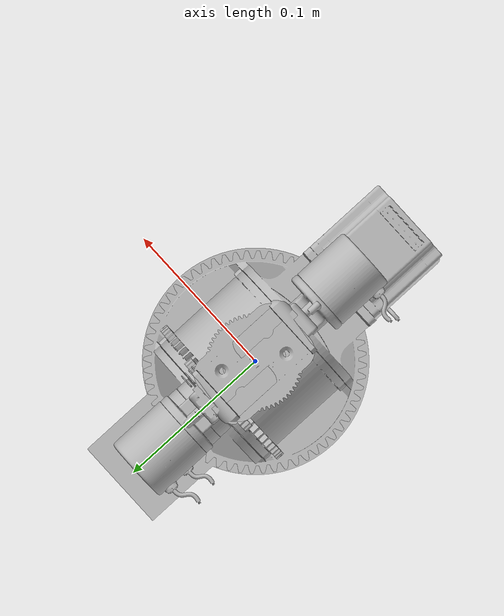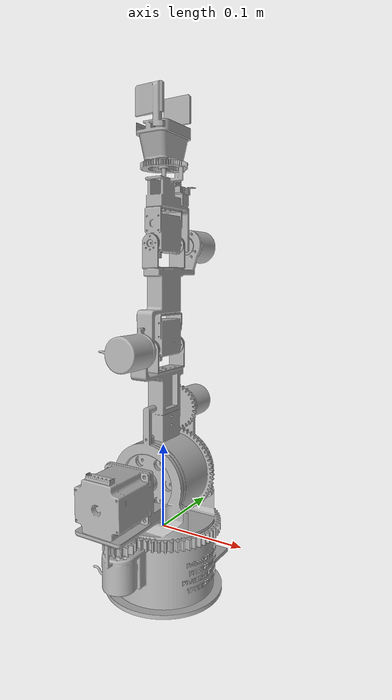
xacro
<?xml version="1.0" ?>
<robot name="robotic" xmlns:xacro="http://www.ros.org/wiki/xacro">

<xacro:include filename="$(find robotic_description)/urdf/materials.xacro" />
<xacro:include filename="$(find robotic_description)/urdf/robotic.trans" />
<xacro:include filename="$(find robotic_description)/urdf/robotic.gazebo" />
<link name="base_link">
  <inertial>
    <origin xyz="-0.0006197580582812044 -0.033206671784566606 0.010865637221635136" rpy="0 0 0"/>
    <mass value="0.43302193292479546"/>
    <inertia ixx="0.001313" iyy="0.001432" izz="0.000805" ixy="6e-06" iyz="-0.000148" ixz="2.1e-05"/>
  </inertial>
  <visual>
    <origin xyz="0 0 0" rpy="1.5708 0 0"/>
    <geometry>
      <mesh filename="file://$(find robotic_description)/meshes/base_link.stl" scale="0.001 0.001 0.001"/>
    </geometry>
    <material name="silver"/>
  </visual>
  <collision>
    <origin xyz="0 0 0" rpy="1.5708 0 0"/>
    <geometry>
      <mesh filename="file://$(find robotic_description)/meshes/base_link.stl" scale="0.001 0.001 0.001"/>
    </geometry>
  </collision>
</link>

<link name="SHOULDER_1">
  <inertial>
    <origin xyz="-2.8680225580023265e-05 0.062031226314745724 0.07526534523296123" rpy="0 0 0"/>
    <mass value="1.5905060599186267"/>
    <inertia ixx="0.00487" iyy="0.004113" izz="0.001823" ixy="-2e-06" iyz="0.000179" ixz="-0.0"/>
  </inertial>
  <visual>
    <origin xyz="-0.0 -0.000487 -0.0" rpy="0 0 0"/>
    <geometry>
      <mesh filename="file://$(find robotic_description)/meshes/SHOULDER_1.stl" scale="0.001 0.001 0.001"/>
    </geometry>
    <material name="silver"/>
  </visual>
  <collision>
    <origin xyz="-0.0 -0.000487 -0.0" rpy="0 0 0"/>
    <geometry>
      <mesh filename="file://$(find robotic_description)/meshes/SHOULDER_1.stl" scale="0.001 0.001 0.001"/>
    </geometry>
  </collision>
</link>

<link name="LOWER_ARM_1">
  <inertial>
    <origin xyz="0.00022188412497526803 0.044088835954916084 -0.02046970272003481" rpy="0 0 0"/>
    <mass value="2.24700987919169"/>
    <inertia ixx="0.011497" iyy="0.003238" izz="0.010342" ixy="-5.4e-05" iyz="-0.002861" ixz="-2.8e-05"/>
  </inertial>
  <visual>
    <origin xyz="-0.0 -0.064574 -0.03115" rpy="0 0 0"/>
    <geometry>
      <mesh filename="file://$(find robotic_description)/meshes/LOWER_ARM_1.stl" scale="0.001 0.001 0.001"/>
    </geometry>
    <material name="silver"/>
  </visual>
  <collision>
    <origin xyz="-0.0 -0.064574 -0.03115" rpy="0 0 0"/>
    <geometry>
      <mesh filename="file://$(find robotic_description)/meshes/LOWER_ARM_1.stl" scale="0.001 0.001 0.001"/>
    </geometry>
  </collision>
</link>

<link name="UPPER_ARM_1">
  <inertial>
    <origin xyz="-4.616653372606889e-05 0.0639979803152878 0.005626819880352827" rpy="0 0 0"/>
    <mass value="0.15526470472872758"/>
    <inertia ixx="0.000483" iyy="0.0002" izz="0.000299" ixy="0.0" iyz="0.000173" ixz="-0.0"/>
  </inertial>
  <visual>
    <origin xyz="0.0 -0.214478 0.0276" rpy="0 0 0"/>
    <geometry>
      <mesh filename="file://$(find robotic_description)/meshes/UPPER_ARM_1.stl" scale="0.001 0.001 0.001"/>
    </geometry>
    <material name="silver"/>
  </visual>
  <collision>
    <origin xyz="0.0 -0.214478 0.0276" rpy="0 0 0"/>
    <geometry>
      <mesh filename="file://$(find robotic_description)/meshes/UPPER_ARM_1.stl" scale="0.001 0.001 0.001"/>
    </geometry>
  </collision>
</link>

<link name="WRIST_1">
  <inertial>
    <origin xyz="-6.006126105094087e-06 0.022392627588266822 -0.0001885326507429853" rpy="0 0 0"/>
    <mass value="0.062244194694843255"/>
    <inertia ixx="2.4e-05" iyy="2.1e-05" izz="1.8e-05" ixy="-0.0" iyz="-0.0" ixz="0.0"/>
  </inertial>
  <visual>
    <origin xyz="-0.0 -0.407987 -0.0001" rpy="0 0 0"/>
    <geometry>
      <mesh filename="file://$(find robotic_description)/meshes/WRIST_1.stl" scale="0.001 0.001 0.001"/>
    </geometry>
    <material name="silver"/>
  </visual>
  <collision>
    <origin xyz="-0.0 -0.407987 -0.0001" rpy="0 0 0"/>
    <geometry>
      <mesh filename="file://$(find robotic_description)/meshes/WRIST_1.stl" scale="0.001 0.001 0.001"/>
    </geometry>
  </collision>
</link>

<link name="finger_1_1">
  <inertial>
    <origin xyz="-0.0007126631883796379 0.016327909388517248 0.05456077201686822" rpy="0 0 0"/>
    <mass value="0.0544277408008124"/>
    <inertia ixx="1.4e-05" iyy="8e-06" izz="1.4e-05" ixy="3e-06" iyz="-3e-06" ixz="1e-06"/>
  </inertial>
  <visual>
    <origin xyz="-0.006 -0.447874 0.0298" rpy="0 0 0"/>
    <geometry>
      <mesh filename="file://$(find robotic_description)/meshes/finger_1_1.stl" scale="0.001 0.001 0.001"/>
    </geometry>
    <material name="silver"/>
  </visual>
  <collision>
    <origin xyz="-0.006 -0.447874 0.0298" rpy="0 0 0"/>
    <geometry>
      <mesh filename="file://$(find robotic_description)/meshes/finger_1_1.stl" scale="0.001 0.001 0.001"/>
    </geometry>
  </collision>
</link>

<link name="finger_1_2">
  <inertial>
    <origin xyz="0.0007126631883832904 0.016327909388515915 0.0002391557905749818" rpy="0 0 0"/>
    <mass value="0.0544277408008124"/>
    <inertia ixx="1.4e-05" iyy="8e-06" izz="1.4e-05" ixy="-3e-06" iyz="3e-06" ixz="1e-06"/>
  </inertial>
  <visual>
    <origin xyz="0.006 -0.447874 0.024136" rpy="0 0 0"/>
    <geometry>
      <mesh filename="file://$(find robotic_description)/meshes/finger_1_2.stl" scale="0.001 0.001 0.001"/>
    </geometry>
    <material name="silver"/>
  </visual>
  <collision>
    <origin xyz="0.006 -0.447874 0.024136" rpy="0 0 0"/>
    <geometry>
      <mesh filename="file://$(find robotic_description)/meshes/finger_1_2.stl" scale="0.001 0.001 0.001"/>
    </geometry>
  </collision>
</link>

<link name="WRIST_ARM_v1_1">
  <inertial>
    <origin xyz="0.00013557693321748665 0.02430753708099259 -0.030810701686775542" rpy="0 0 0"/>
    <mass value="0.4651410516079968"/>
    <inertia ixx="0.000359" iyy="0.000152" izz="0.000241" ixy="-2e-06" iyz="2.5e-05" ixz="0.0"/>
  </inertial>
  <visual>
    <origin xyz="1.1e-05 -0.328187 -0.02585" rpy="0 0 0"/>
    <geometry>
      <mesh filename="file://$(find robotic_description)/meshes/WRIST_ARM_v1_1.stl" scale="0.001 0.001 0.001"/>
    </geometry>
    <material name="silver"/>
  </visual>
  <collision>
    <origin xyz="1.1e-05 -0.328187 -0.02585" rpy="0 0 0"/>
    <geometry>
      <mesh filename="file://$(find robotic_description)/meshes/WRIST_ARM_v1_1.stl" scale="0.001 0.001 0.001"/>
    </geometry>
  </collision>
</link>

<joint name="base_joint" type="continuous">
  <origin xyz="0.0 0.000487 0.0" rpy="1.5708 0 0"/>
  <parent link="base_link"/>
  <child link="SHOULDER_1"/>
  <axis xyz="0.0 -1.0 0.0"/>
</joint>

<joint name="shoulder_joint" type="continuous">
  <origin xyz="0.0 0.064087 0.03115" rpy="0 0 0"/>
  <parent link="SHOULDER_1"/>
  <child link="LOWER_ARM_1"/>
  <axis xyz="0.0 -0.0 -1.0"/>
</joint>

<joint name="upper_lower_arm_joint" type="continuous">
  <origin xyz="-0.0 0.149904 -0.05875" rpy="0 0 0"/>
  <parent link="LOWER_ARM_1"/>
  <child link="UPPER_ARM_1"/>
  <axis xyz="-0.0 0.0 1.0"/>
</joint>

<joint name="wrist joint" type="continuous">
  <origin xyz="1.1e-05 0.0798 -0.02575" rpy="0 0 0"/>
  <parent link="WRIST_ARM_v1_1"/>
  <child link="WRIST_1"/>
  <axis xyz="-0.0 -1.0 -0.0"/>
</joint>

<joint name="Slider 7" type="prismatic">
  <origin xyz="0.006 0.039887 -0.0299" rpy="0 0 0"/>
  <parent link="WRIST_1"/>
  <child link="finger_1_1"/>
  <axis xyz="-0.0 -0.0 -1.0"/>
  <limit upper="0.0" lower="0.0" effort="100" velocity="100"/>
</joint>

<joint name="Slider 8" type="prismatic">
  <origin xyz="-0.006 0.039887 -0.024236" rpy="0 0 0"/>
  <parent link="WRIST_1"/>
  <child link="finger_1_2"/>
  <axis xyz="-0.0 -0.0 -1.0"/>
  <limit upper="0.0" lower="0.0" effort="100" velocity="100"/>
</joint>

<joint name="upper_wrist_joint" type="continuous">
  <origin xyz="-1.1e-05 0.113709 0.05345" rpy="0 0 0"/>
  <parent link="UPPER_ARM_1"/>
  <child link="WRIST_ARM_v1_1"/>
  <axis xyz="-0.0 0.0 -1.0"/>
</joint>

</robot>

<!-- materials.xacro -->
<robot name="robotic" xmlns:xacro="http://www.ros.org/wiki/xacro" >

<material name="silver">
  <color rgba="0.700 0.700 0.700 1.000"/>
</material>

</robot>

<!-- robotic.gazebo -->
<robot name="robotic" xmlns:xacro="http://www.ros.org/wiki/xacro" >

<xacro:property name="body_color" value="Gazebo/Silver" />

<gazebo>
  <plugin name="control" filename="libgazebo_ros_control.so"/>
</gazebo>
<gazebo reference="base_link">
  <material>${body_color}</material>
  <mu1>0.2</mu1>
  <mu2>0.2</mu2>
  <self_collide>true</self_collide>
  <gravity>true</gravity>
</gazebo>

<gazebo reference="SHOULDER_1">
  <material>${body_color}</material>
  <mu1>0.2</mu1>
  <mu2>0.2</mu2>
  <self_collide>true</self_collide>
</gazebo>

<gazebo reference="LOWER_ARM_1">
  <material>${body_color}</material>
  <mu1>0.2</mu1>
  <mu2>0.2</mu2>
  <self_collide>true</self_collide>
</gazebo>

<gazebo reference="UPPER_ARM_1">
  <material>${body_color}</material>
  <mu1>0.2</mu1>
  <mu2>0.2</mu2>
  <self_collide>true</self_collide>
</gazebo>

<gazebo reference="WRIST_1">
  <material>${body_color}</material>
  <mu1>0.2</mu1>
  <mu2>0.2</mu2>
  <self_collide>true</self_collide>
</gazebo>

<gazebo reference="finger_1_1">
  <material>${body_color}</material>
  <mu1>0.2</mu1>
  <mu2>0.2</mu2>
  <self_collide>true</self_collide>
</gazebo>

<gazebo reference="finger_1_2">
  <material>${body_color}</material>
  <mu1>0.2</mu1>
  <mu2>0.2</mu2>
  <self_collide>true</self_collide>
</gazebo>

<gazebo reference="WRIST_ARM_v1_1">
  <material>${body_color}</material>
  <mu1>0.2</mu1>
  <mu2>0.2</mu2>
  <self_collide>true</self_collide>
</gazebo>

</robot>
